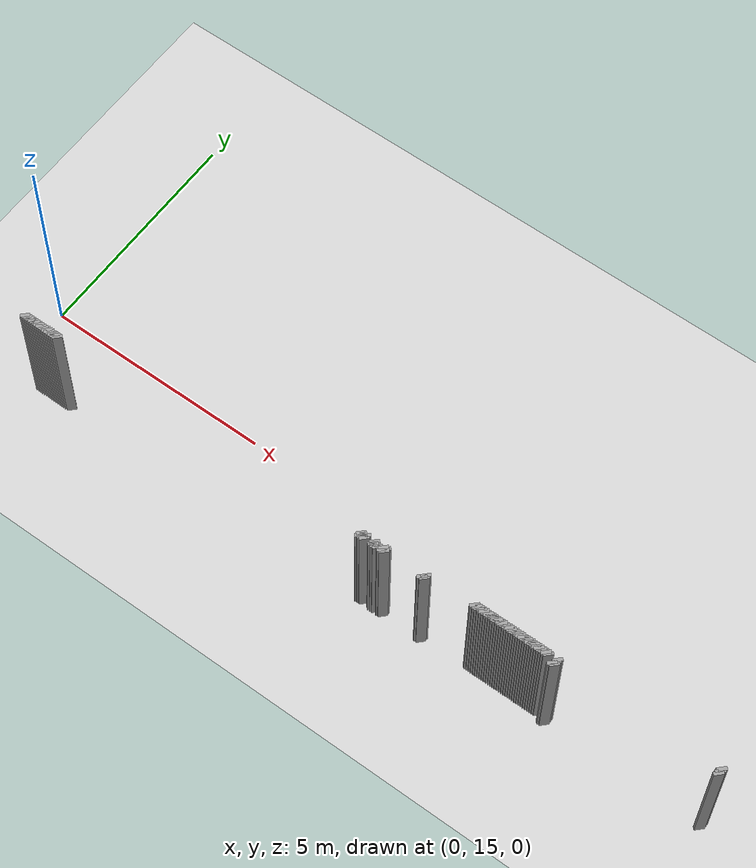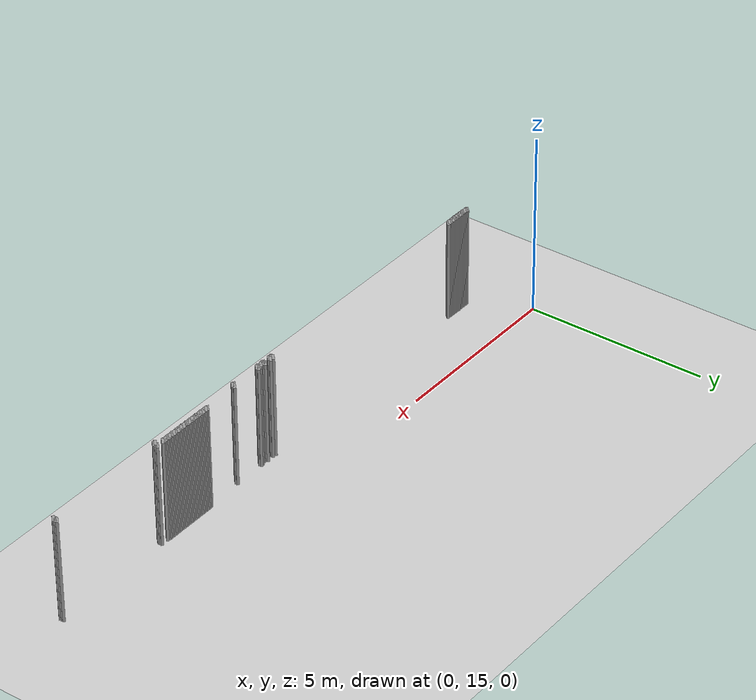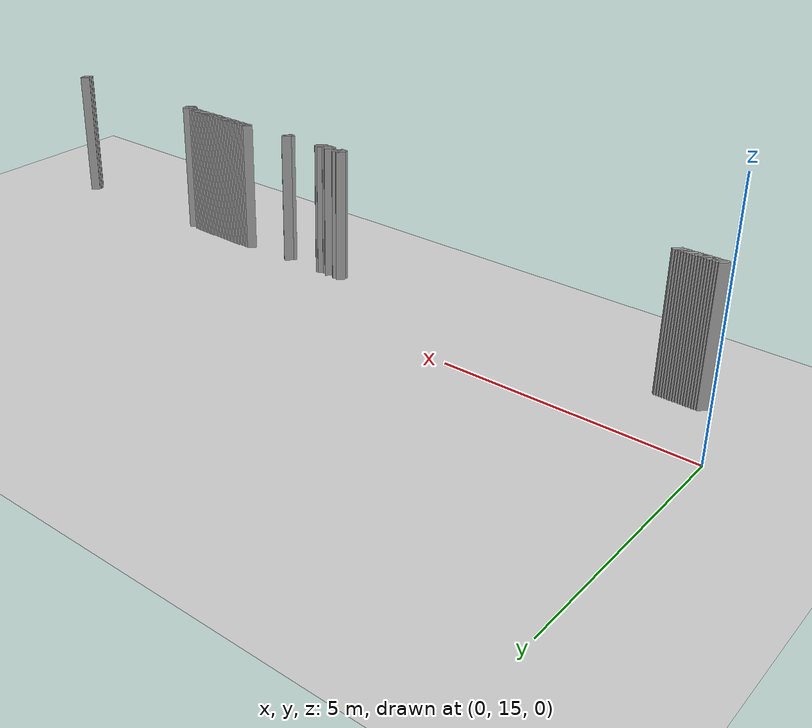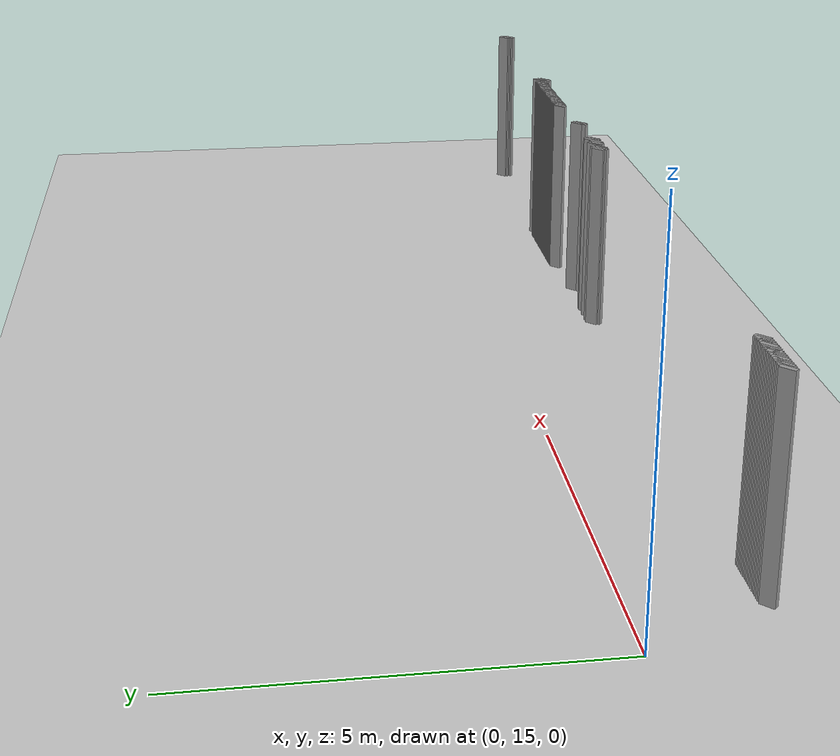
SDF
<sdf version="1.5">
 <world name="default">
  <include><uri>model://ground_plane</uri></include>
  <include><uri>model://sun</uri></include>
  <model name="grey_wall_964">
   <static>1</static>
   <link name="link">
    <pose>11.200000000000001 13.600000000000001  1.4 0 0 -0.7853981633974483</pose>
    <collision name="collision">
     <geometry><box><size>0.07071067811865576 .2  2.8</size></box></geometry>
    </collision>
    <visual name="visual">
     <cast_shadows>0</cast_shadows>
     <geometry><box><size>0.07071067811865576 .2  2.8</size></box></geometry>
     <material>
      <script>
       <uri>model://grey_wall/materials/scripts</uri>
       <uri>model://grey_wall/materials/textures</uri>
       <name>vrc/grey_wall</name>
      </script>
     </material>
    </visual>
   </link>
  </model>
  <model name="grey_wall_965">
   <static>1</static>
   <link name="link">
    <pose>11.25 13.600000000000001  1.4 0 0 -0.7853981633974483</pose>
    <collision name="collision">
     <geometry><box><size>0.07071067811865576 .2  2.8</size></box></geometry>
    </collision>
    <visual name="visual">
     <cast_shadows>0</cast_shadows>
     <geometry><box><size>0.07071067811865576 .2  2.8</size></box></geometry>
     <material>
      <script>
       <uri>model://grey_wall/materials/scripts</uri>
       <uri>model://grey_wall/materials/textures</uri>
       <name>vrc/grey_wall</name>
      </script>
     </material>
    </visual>
   </link>
  </model>
  <model name="grey_wall_966">
   <static>1</static>
   <link name="link">
    <pose>11.3 13.600000000000001  1.4 0 0 -0.7853981633974483</pose>
    <collision name="collision">
     <geometry><box><size>0.07071067811865576 .2  2.8</size></box></geometry>
    </collision>
    <visual name="visual">
     <cast_shadows>0</cast_shadows>
     <geometry><box><size>0.07071067811865576 .2  2.8</size></box></geometry>
     <material>
      <script>
       <uri>model://grey_wall/materials/scripts</uri>
       <uri>model://grey_wall/materials/textures</uri>
       <name>vrc/grey_wall</name>
      </script>
     </material>
    </visual>
   </link>
  </model>
  <model name="grey_wall_967">
   <static>1</static>
   <link name="link">
    <pose>11.350000000000001 13.600000000000001  1.4 0 0 -0.7853981633974483</pose>
    <collision name="collision">
     <geometry><box><size>0.07071067811865576 .2  2.8</size></box></geometry>
    </collision>
    <visual name="visual">
     <cast_shadows>0</cast_shadows>
     <geometry><box><size>0.07071067811865576 .2  2.8</size></box></geometry>
     <material>
      <script>
       <uri>model://grey_wall/materials/scripts</uri>
       <uri>model://grey_wall/materials/textures</uri>
       <name>vrc/grey_wall</name>
      </script>
     </material>
    </visual>
   </link>
  </model>
  <model name="grey_wall_968">
   <static>1</static>
   <link name="link">
    <pose>11.4 13.600000000000001  1.4 0 0 -0.7853981633974483</pose>
    <collision name="collision">
     <geometry><box><size>0.07071067811865576 .2  2.8</size></box></geometry>
    </collision>
    <visual name="visual">
     <cast_shadows>0</cast_shadows>
     <geometry><box><size>0.07071067811865576 .2  2.8</size></box></geometry>
     <material>
      <script>
       <uri>model://grey_wall/materials/scripts</uri>
       <uri>model://grey_wall/materials/textures</uri>
       <name>vrc/grey_wall</name>
      </script>
     </material>
    </visual>
   </link>
  </model>
  <model name="grey_wall_969">
   <static>1</static>
   <link name="link">
    <pose>11.450000000000001 13.600000000000001  1.4 0 0 -0.7853981633974483</pose>
    <collision name="collision">
     <geometry><box><size>0.07071067811865576 .2  2.8</size></box></geometry>
    </collision>
    <visual name="visual">
     <cast_shadows>0</cast_shadows>
     <geometry><box><size>0.07071067811865576 .2  2.8</size></box></geometry>
     <material>
      <script>
       <uri>model://grey_wall/materials/scripts</uri>
       <uri>model://grey_wall/materials/textures</uri>
       <name>vrc/grey_wall</name>
      </script>
     </material>
    </visual>
   </link>
  </model>
  <model name="grey_wall_970">
   <static>1</static>
   <link name="link">
    <pose>11.5 13.600000000000001  1.4 0 0 -0.7853981633974483</pose>
    <collision name="collision">
     <geometry><box><size>0.07071067811865576 .2  2.8</size></box></geometry>
    </collision>
    <visual name="visual">
     <cast_shadows>0</cast_shadows>
     <geometry><box><size>0.07071067811865576 .2  2.8</size></box></geometry>
     <material>
      <script>
       <uri>model://grey_wall/materials/scripts</uri>
       <uri>model://grey_wall/materials/textures</uri>
       <name>vrc/grey_wall</name>
      </script>
     </material>
    </visual>
   </link>
  </model>
  <model name="grey_wall_971">
   <static>1</static>
   <link name="link">
    <pose>11.55 13.600000000000001  1.4 0 0 -0.7853981633974483</pose>
    <collision name="collision">
     <geometry><box><size>0.07071067811865576 .2  2.8</size></box></geometry>
    </collision>
    <visual name="visual">
     <cast_shadows>0</cast_shadows>
     <geometry><box><size>0.07071067811865576 .2  2.8</size></box></geometry>
     <material>
      <script>
       <uri>model://grey_wall/materials/scripts</uri>
       <uri>model://grey_wall/materials/textures</uri>
       <name>vrc/grey_wall</name>
      </script>
     </material>
    </visual>
   </link>
  </model>
  <model name="grey_wall_972">
   <static>1</static>
   <link name="link">
    <pose>11.600000000000001 13.600000000000001  1.4 0 0 -0.7853981633974483</pose>
    <collision name="collision">
     <geometry><box><size>0.07071067811865576 .2  2.8</size></box></geometry>
    </collision>
    <visual name="visual">
     <cast_shadows>0</cast_shadows>
     <geometry><box><size>0.07071067811865576 .2  2.8</size></box></geometry>
     <material>
      <script>
       <uri>model://grey_wall/materials/scripts</uri>
       <uri>model://grey_wall/materials/textures</uri>
       <name>vrc/grey_wall</name>
      </script>
     </material>
    </visual>
   </link>
  </model>
  <model name="grey_wall_973">
   <static>1</static>
   <link name="link">
    <pose>11.65 13.600000000000001  1.4 0 0 -0.7853981633974483</pose>
    <collision name="collision">
     <geometry><box><size>0.07071067811865576 .2  2.8</size></box></geometry>
    </collision>
    <visual name="visual">
     <cast_shadows>0</cast_shadows>
     <geometry><box><size>0.07071067811865576 .2  2.8</size></box></geometry>
     <material>
      <script>
       <uri>model://grey_wall/materials/scripts</uri>
       <uri>model://grey_wall/materials/textures</uri>
       <name>vrc/grey_wall</name>
      </script>
     </material>
    </visual>
   </link>
  </model>
  <model name="grey_wall_974">
   <static>1</static>
   <link name="link">
    <pose>11.700000000000001 13.600000000000001  1.4 0 0 -0.7853981633974483</pose>
    <collision name="collision">
     <geometry><box><size>0.07071067811865576 .2  2.8</size></box></geometry>
    </collision>
    <visual name="visual">
     <cast_shadows>0</cast_shadows>
     <geometry><box><size>0.07071067811865576 .2  2.8</size></box></geometry>
     <material>
      <script>
       <uri>model://grey_wall/materials/scripts</uri>
       <uri>model://grey_wall/materials/textures</uri>
       <name>vrc/grey_wall</name>
      </script>
     </material>
    </visual>
   </link>
  </model>
  <model name="grey_wall_975">
   <static>1</static>
   <link name="link">
    <pose>11.75 13.600000000000001  1.4 0 0 -0.7853981633974483</pose>
    <collision name="collision">
     <geometry><box><size>0.07071067811865576 .2  2.8</size></box></geometry>
    </collision>
    <visual name="visual">
     <cast_shadows>0</cast_shadows>
     <geometry><box><size>0.07071067811865576 .2  2.8</size></box></geometry>
     <material>
      <script>
       <uri>model://grey_wall/materials/scripts</uri>
       <uri>model://grey_wall/materials/textures</uri>
       <name>vrc/grey_wall</name>
      </script>
     </material>
    </visual>
   </link>
  </model>
  <model name="grey_wall_976">
   <static>1</static>
   <link name="link">
    <pose>11.8 13.600000000000001  1.4 0 0 -0.7853981633974483</pose>
    <collision name="collision">
     <geometry><box><size>0.07071067811865576 .2  2.8</size></box></geometry>
    </collision>
    <visual name="visual">
     <cast_shadows>0</cast_shadows>
     <geometry><box><size>0.07071067811865576 .2  2.8</size></box></geometry>
     <material>
      <script>
       <uri>model://grey_wall/materials/scripts</uri>
       <uri>model://grey_wall/materials/textures</uri>
       <name>vrc/grey_wall</name>
      </script>
     </material>
    </visual>
   </link>
  </model>
  <model name="grey_wall_977">
   <static>1</static>
   <link name="link">
    <pose>11.850000000000001 13.600000000000001  1.4 0 0 -0.7853981633974483</pose>
    <collision name="collision">
     <geometry><box><size>0.07071067811865576 .2  2.8</size></box></geometry>
    </collision>
    <visual name="visual">
     <cast_shadows>0</cast_shadows>
     <geometry><box><size>0.07071067811865576 .2  2.8</size></box></geometry>
     <material>
      <script>
       <uri>model://grey_wall/materials/scripts</uri>
       <uri>model://grey_wall/materials/textures</uri>
       <name>vrc/grey_wall</name>
      </script>
     </material>
    </visual>
   </link>
  </model>
  <model name="grey_wall_978">
   <static>1</static>
   <link name="link">
    <pose>11.9 13.600000000000001  1.4 0 0 -0.7853981633974483</pose>
    <collision name="collision">
     <geometry><box><size>0.07071067811865576 .2  2.8</size></box></geometry>
    </collision>
    <visual name="visual">
     <cast_shadows>0</cast_shadows>
     <geometry><box><size>0.07071067811865576 .2  2.8</size></box></geometry>
     <material>
      <script>
       <uri>model://grey_wall/materials/scripts</uri>
       <uri>model://grey_wall/materials/textures</uri>
       <name>vrc/grey_wall</name>
      </script>
     </material>
    </visual>
   </link>
  </model>
  <model name="grey_wall_979">
   <static>1</static>
   <link name="link">
    <pose>11.950000000000001 13.600000000000001  1.4 0 0 -0.7853981633974483</pose>
    <collision name="collision">
     <geometry><box><size>0.07071067811865576 .2  2.8</size></box></geometry>
    </collision>
    <visual name="visual">
     <cast_shadows>0</cast_shadows>
     <geometry><box><size>0.07071067811865576 .2  2.8</size></box></geometry>
     <material>
      <script>
       <uri>model://grey_wall/materials/scripts</uri>
       <uri>model://grey_wall/materials/textures</uri>
       <name>vrc/grey_wall</name>
      </script>
     </material>
    </visual>
   </link>
  </model>
  <model name="grey_wall_980">
   <static>1</static>
   <link name="link">
    <pose>12.0 13.600000000000001  1.4 0 0 -0.7853981633974483</pose>
    <collision name="collision">
     <geometry><box><size>0.07071067811865576 .2  2.8</size></box></geometry>
    </collision>
    <visual name="visual">
     <cast_shadows>0</cast_shadows>
     <geometry><box><size>0.07071067811865576 .2  2.8</size></box></geometry>
     <material>
      <script>
       <uri>model://grey_wall/materials/scripts</uri>
       <uri>model://grey_wall/materials/textures</uri>
       <name>vrc/grey_wall</name>
      </script>
     </material>
    </visual>
   </link>
  </model>
  <model name="grey_wall_981">
   <static>1</static>
   <link name="link">
    <pose>12.05 13.600000000000001  1.4 0 0 -0.7853981633974483</pose>
    <collision name="collision">
     <geometry><box><size>0.07071067811865576 .2  2.8</size></box></geometry>
    </collision>
    <visual name="visual">
     <cast_shadows>0</cast_shadows>
     <geometry><box><size>0.07071067811865576 .2  2.8</size></box></geometry>
     <material>
      <script>
       <uri>model://grey_wall/materials/scripts</uri>
       <uri>model://grey_wall/materials/textures</uri>
       <name>vrc/grey_wall</name>
      </script>
     </material>
    </visual>
   </link>
  </model>
  <model name="grey_wall_982">
   <static>1</static>
   <link name="link">
    <pose>12.100000000000001 13.600000000000001  1.4 0 0 -0.7853981633974483</pose>
    <collision name="collision">
     <geometry><box><size>0.07071067811865576 .2  2.8</size></box></geometry>
    </collision>
    <visual name="visual">
     <cast_shadows>0</cast_shadows>
     <geometry><box><size>0.07071067811865576 .2  2.8</size></box></geometry>
     <material>
      <script>
       <uri>model://grey_wall/materials/scripts</uri>
       <uri>model://grey_wall/materials/textures</uri>
       <name>vrc/grey_wall</name>
      </script>
     </material>
    </visual>
   </link>
  </model>
  <model name="grey_wall_983">
   <static>1</static>
   <link name="link">
    <pose>12.15 13.600000000000001  1.4 0 0 -0.7853981633974483</pose>
    <collision name="collision">
     <geometry><box><size>0.07071067811865576 .2  2.8</size></box></geometry>
    </collision>
    <visual name="visual">
     <cast_shadows>0</cast_shadows>
     <geometry><box><size>0.07071067811865576 .2  2.8</size></box></geometry>
     <material>
      <script>
       <uri>model://grey_wall/materials/scripts</uri>
       <uri>model://grey_wall/materials/textures</uri>
       <name>vrc/grey_wall</name>
      </script>
     </material>
    </visual>
   </link>
  </model>
  <model name="grey_wall_984">
   <static>1</static>
   <link name="link">
    <pose>12.200000000000001 13.600000000000001  1.4 0 0 -0.7853981633974483</pose>
    <collision name="collision">
     <geometry><box><size>0.07071067811865576 .2  2.8</size></box></geometry>
    </collision>
    <visual name="visual">
     <cast_shadows>0</cast_shadows>
     <geometry><box><size>0.07071067811865576 .2  2.8</size></box></geometry>
     <material>
      <script>
       <uri>model://grey_wall/materials/scripts</uri>
       <uri>model://grey_wall/materials/textures</uri>
       <name>vrc/grey_wall</name>
      </script>
     </material>
    </visual>
   </link>
  </model>
  <model name="grey_wall_985">
   <static>1</static>
   <link name="link">
    <pose>12.25 13.600000000000001  1.4 0 0 -0.7853981633974483</pose>
    <collision name="collision">
     <geometry><box><size>0.07071067811865576 .2  2.8</size></box></geometry>
    </collision>
    <visual name="visual">
     <cast_shadows>0</cast_shadows>
     <geometry><box><size>0.07071067811865576 .2  2.8</size></box></geometry>
     <material>
      <script>
       <uri>model://grey_wall/materials/scripts</uri>
       <uri>model://grey_wall/materials/textures</uri>
       <name>vrc/grey_wall</name>
      </script>
     </material>
    </visual>
   </link>
  </model>
  <model name="grey_wall_986">
   <static>1</static>
   <link name="link">
    <pose>12.3 13.600000000000001  1.4 0 0 -0.7853981633974483</pose>
    <collision name="collision">
     <geometry><box><size>0.07071067811865576 .2  2.8</size></box></geometry>
    </collision>
    <visual name="visual">
     <cast_shadows>0</cast_shadows>
     <geometry><box><size>0.07071067811865576 .2  2.8</size></box></geometry>
     <material>
      <script>
       <uri>model://grey_wall/materials/scripts</uri>
       <uri>model://grey_wall/materials/textures</uri>
       <name>vrc/grey_wall</name>
      </script>
     </material>
    </visual>
   </link>
  </model>
  <model name="grey_wall_987">
   <static>1</static>
   <link name="link">
    <pose>12.350000000000001 13.600000000000001  1.4 0 0 -0.7853981633974483</pose>
    <collision name="collision">
     <geometry><box><size>0.07071067811865576 .2  2.8</size></box></geometry>
    </collision>
    <visual name="visual">
     <cast_shadows>0</cast_shadows>
     <geometry><box><size>0.07071067811865576 .2  2.8</size></box></geometry>
     <material>
      <script>
       <uri>model://grey_wall/materials/scripts</uri>
       <uri>model://grey_wall/materials/textures</uri>
       <name>vrc/grey_wall</name>
      </script>
     </material>
    </visual>
   </link>
  </model>
  <model name="grey_wall_988">
   <static>1</static>
   <link name="link">
    <pose>12.4 13.600000000000001  1.4 0 0 -0.7853981633974483</pose>
    <collision name="collision">
     <geometry><box><size>0.07071067811865576 .2  2.8</size></box></geometry>
    </collision>
    <visual name="visual">
     <cast_shadows>0</cast_shadows>
     <geometry><box><size>0.07071067811865576 .2  2.8</size></box></geometry>
     <material>
      <script>
       <uri>model://grey_wall/materials/scripts</uri>
       <uri>model://grey_wall/materials/textures</uri>
       <name>vrc/grey_wall</name>
      </script>
     </material>
    </visual>
   </link>
  </model>
  <model name="grey_wall_989">
   <static>1</static>
   <link name="link">
    <pose>12.450000000000001 13.600000000000001  1.4 0 0 -0.7853981633974483</pose>
    <collision name="collision">
     <geometry><box><size>0.07071067811865576 .2  2.8</size></box></geometry>
    </collision>
    <visual name="visual">
     <cast_shadows>0</cast_shadows>
     <geometry><box><size>0.07071067811865576 .2  2.8</size></box></geometry>
     <material>
      <script>
       <uri>model://grey_wall/materials/scripts</uri>
       <uri>model://grey_wall/materials/textures</uri>
       <name>vrc/grey_wall</name>
      </script>
     </material>
    </visual>
   </link>
  </model>
  <model name="grey_wall_990">
   <static>1</static>
   <link name="link">
    <pose>12.5 13.600000000000001  1.4 0 0 -0.7853981633974483</pose>
    <collision name="collision">
     <geometry><box><size>0.07071067811865576 .2  2.8</size></box></geometry>
    </collision>
    <visual name="visual">
     <cast_shadows>0</cast_shadows>
     <geometry><box><size>0.07071067811865576 .2  2.8</size></box></geometry>
     <material>
      <script>
       <uri>model://grey_wall/materials/scripts</uri>
       <uri>model://grey_wall/materials/textures</uri>
       <name>vrc/grey_wall</name>
      </script>
     </material>
    </visual>
   </link>
  </model>
  <model name="grey_wall_991">
   <static>1</static>
   <link name="link">
    <pose>12.55 13.600000000000001  1.4 0 0 -0.7853981633974483</pose>
    <collision name="collision">
     <geometry><box><size>0.07071067811865576 .2  2.8</size></box></geometry>
    </collision>
    <visual name="visual">
     <cast_shadows>0</cast_shadows>
     <geometry><box><size>0.07071067811865576 .2  2.8</size></box></geometry>
     <material>
      <script>
       <uri>model://grey_wall/materials/scripts</uri>
       <uri>model://grey_wall/materials/textures</uri>
       <name>vrc/grey_wall</name>
      </script>
     </material>
    </visual>
   </link>
  </model>
  <model name="grey_wall_992">
   <static>1</static>
   <link name="link">
    <pose>12.600000000000001 13.600000000000001  1.4 0 0 -0.7853981633974483</pose>
    <collision name="collision">
     <geometry><box><size>0.07071067811865576 .2  2.8</size></box></geometry>
    </collision>
    <visual name="visual">
     <cast_shadows>0</cast_shadows>
     <geometry><box><size>0.07071067811865576 .2  2.8</size></box></geometry>
     <material>
      <script>
       <uri>model://grey_wall/materials/scripts</uri>
       <uri>model://grey_wall/materials/textures</uri>
       <name>vrc/grey_wall</name>
      </script>
     </material>
    </visual>
   </link>
  </model>
  <model name="grey_wall_993">
   <static>1</static>
   <link name="link">
    <pose>12.65 13.600000000000001  1.4 0 0 -0.7853981633974483</pose>
    <collision name="collision">
     <geometry><box><size>0.07071067811865576 .2  2.8</size></box></geometry>
    </collision>
    <visual name="visual">
     <cast_shadows>0</cast_shadows>
     <geometry><box><size>0.07071067811865576 .2  2.8</size></box></geometry>
     <material>
      <script>
       <uri>model://grey_wall/materials/scripts</uri>
       <uri>model://grey_wall/materials/textures</uri>
       <name>vrc/grey_wall</name>
      </script>
     </material>
    </visual>
   </link>
  </model>
  <model name="grey_wall_994">
   <static>1</static>
   <link name="link">
    <pose>12.700000000000001 13.600000000000001  1.4 0 0 -0.7853981633974483</pose>
    <collision name="collision">
     <geometry><box><size>0.07071067811865576 .2  2.8</size></box></geometry>
    </collision>
    <visual name="visual">
     <cast_shadows>0</cast_shadows>
     <geometry><box><size>0.07071067811865576 .2  2.8</size></box></geometry>
     <material>
      <script>
       <uri>model://grey_wall/materials/scripts</uri>
       <uri>model://grey_wall/materials/textures</uri>
       <name>vrc/grey_wall</name>
      </script>
     </material>
    </visual>
   </link>
  </model>
  <model name="grey_wall_995">
   <static>1</static>
   <link name="link">
    <pose>12.75 13.600000000000001  1.4 0 0 -0.7853981633974483</pose>
    <collision name="collision">
     <geometry><box><size>0.07071067811865576 .2  2.8</size></box></geometry>
    </collision>
    <visual name="visual">
     <cast_shadows>0</cast_shadows>
     <geometry><box><size>0.07071067811865576 .2  2.8</size></box></geometry>
     <material>
      <script>
       <uri>model://grey_wall/materials/scripts</uri>
       <uri>model://grey_wall/materials/textures</uri>
       <name>vrc/grey_wall</name>
      </script>
     </material>
    </visual>
   </link>
  </model>
  <model name="grey_wall_996">
   <static>1</static>
   <link name="link">
    <pose>12.8 13.600000000000001  1.4 0 0 -0.7853981633974483</pose>
    <collision name="collision">
     <geometry><box><size>0.07071067811865576 .2  2.8</size></box></geometry>
    </collision>
    <visual name="visual">
     <cast_shadows>0</cast_shadows>
     <geometry><box><size>0.07071067811865576 .2  2.8</size></box></geometry>
     <material>
      <script>
       <uri>model://grey_wall/materials/scripts</uri>
       <uri>model://grey_wall/materials/textures</uri>
       <name>vrc/grey_wall</name>
      </script>
     </material>
    </visual>
   </link>
  </model>
  <model name="grey_wall_997">
   <static>1</static>
   <link name="link">
    <pose>13.0 13.600000000000001  1.4 0 0 -0.7853981633974483</pose>
    <collision name="collision">
     <geometry><box><size>0.07071067811865576 .2  2.8</size></box></geometry>
    </collision>
    <visual name="visual">
     <cast_shadows>0</cast_shadows>
     <geometry><box><size>0.07071067811865576 .2  2.8</size></box></geometry>
     <material>
      <script>
       <uri>model://grey_wall/materials/scripts</uri>
       <uri>model://grey_wall/materials/textures</uri>
       <name>vrc/grey_wall</name>
      </script>
     </material>
    </visual>
   </link>
  </model>
  <model name="grey_wall_998">
   <static>1</static>
   <link name="link">
    <pose>16.45 13.600000000000001  1.4 0 0 -0.7853981633974838</pose>
    <collision name="collision">
     <geometry><box><size>0.07071067811865325 .2  2.8</size></box></geometry>
    </collision>
    <visual name="visual">
     <cast_shadows>0</cast_shadows>
     <geometry><box><size>0.07071067811865325 .2  2.8</size></box></geometry>
     <material>
      <script>
       <uri>model://grey_wall/materials/scripts</uri>
       <uri>model://grey_wall/materials/textures</uri>
       <name>vrc/grey_wall</name>
      </script>
     </material>
    </visual>
   </link>
  </model>
  <model name="grey_wall_999">
   <static>1</static>
   <link name="link">
    <pose>8.700000000000001 13.55  1.4 0 0 -0.7853981633974483</pose>
    <collision name="collision">
     <geometry><box><size>0.07071067811865576 .2  2.8</size></box></geometry>
    </collision>
    <visual name="visual">
     <cast_shadows>0</cast_shadows>
     <geometry><box><size>0.07071067811865576 .2  2.8</size></box></geometry>
     <material>
      <script>
       <uri>model://grey_wall/materials/scripts</uri>
       <uri>model://grey_wall/materials/textures</uri>
       <name>vrc/grey_wall</name>
      </script>
     </material>
    </visual>
   </link>
  </model>
  <model name="grey_wall_1000">
   <static>1</static>
   <link name="link">
    <pose>8.8 13.55  1.4 0 0 -0.7853981633974483</pose>
    <collision name="collision">
     <geometry><box><size>0.07071067811865576 .2  2.8</size></box></geometry>
    </collision>
    <visual name="visual">
     <cast_shadows>0</cast_shadows>
     <geometry><box><size>0.07071067811865576 .2  2.8</size></box></geometry>
     <material>
      <script>
       <uri>model://grey_wall/materials/scripts</uri>
       <uri>model://grey_wall/materials/textures</uri>
       <name>vrc/grey_wall</name>
      </script>
     </material>
    </visual>
   </link>
  </model>
  <model name="grey_wall_1001">
   <static>1</static>
   <link name="link">
    <pose>9.0 13.55  1.4 0 0 -0.7853981633974483</pose>
    <collision name="collision">
     <geometry><box><size>0.07071067811865576 .2  2.8</size></box></geometry>
    </collision>
    <visual name="visual">
     <cast_shadows>0</cast_shadows>
     <geometry><box><size>0.07071067811865576 .2  2.8</size></box></geometry>
     <material>
      <script>
       <uri>model://grey_wall/materials/scripts</uri>
       <uri>model://grey_wall/materials/textures</uri>
       <name>vrc/grey_wall</name>
      </script>
     </material>
    </visual>
   </link>
  </model>
  <model name="grey_wall_1002">
   <static>1</static>
   <link name="link">
    <pose>9.200000000000001 13.55  1.4 0 0 -0.7853981633974483</pose>
    <collision name="collision">
     <geometry><box><size>0.07071067811865576 .2  2.8</size></box></geometry>
    </collision>
    <visual name="visual">
     <cast_shadows>0</cast_shadows>
     <geometry><box><size>0.07071067811865576 .2  2.8</size></box></geometry>
     <material>
      <script>
       <uri>model://grey_wall/materials/scripts</uri>
       <uri>model://grey_wall/materials/textures</uri>
       <name>vrc/grey_wall</name>
      </script>
     </material>
    </visual>
   </link>
  </model>
  <model name="grey_wall_1003">
   <static>1</static>
   <link name="link">
    <pose>9.25 13.55  1.4 0 0 -0.7853981633974483</pose>
    <collision name="collision">
     <geometry><box><size>0.07071067811865576 .2  2.8</size></box></geometry>
    </collision>
    <visual name="visual">
     <cast_shadows>0</cast_shadows>
     <geometry><box><size>0.07071067811865576 .2  2.8</size></box></geometry>
     <material>
      <script>
       <uri>model://grey_wall/materials/scripts</uri>
       <uri>model://grey_wall/materials/textures</uri>
       <name>vrc/grey_wall</name>
      </script>
     </material>
    </visual>
   </link>
  </model>
  <model name="grey_wall_1004">
   <static>1</static>
   <link name="link">
    <pose>10.15 13.55  1.4 0 0 -0.7853981633974483</pose>
    <collision name="collision">
     <geometry><box><size>0.07071067811865576 .2  2.8</size></box></geometry>
    </collision>
    <visual name="visual">
     <cast_shadows>0</cast_shadows>
     <geometry><box><size>0.07071067811865576 .2  2.8</size></box></geometry>
     <material>
      <script>
       <uri>model://grey_wall/materials/scripts</uri>
       <uri>model://grey_wall/materials/textures</uri>
       <name>vrc/grey_wall</name>
      </script>
     </material>
    </visual>
   </link>
  </model>
  <model name="grey_wall_1005">
   <static>1</static>
   <link name="link">
    <pose>13.0 13.55  1.4 0 0 -0.7853981633974483</pose>
    <collision name="collision">
     <geometry><box><size>0.07071067811865576 .2  2.8</size></box></geometry>
    </collision>
    <visual name="visual">
     <cast_shadows>0</cast_shadows>
     <geometry><box><size>0.07071067811865576 .2  2.8</size></box></geometry>
     <material>
      <script>
       <uri>model://grey_wall/materials/scripts</uri>
       <uri>model://grey_wall/materials/textures</uri>
       <name>vrc/grey_wall</name>
      </script>
     </material>
    </visual>
   </link>
  </model>
  <model name="grey_wall_1006">
   <static>1</static>
   <link name="link">
    <pose>16.45 13.55  1.4 0 0 -0.7853981633974838</pose>
    <collision name="collision">
     <geometry><box><size>0.07071067811865325 .2  2.8</size></box></geometry>
    </collision>
    <visual name="visual">
     <cast_shadows>0</cast_shadows>
     <geometry><box><size>0.07071067811865325 .2  2.8</size></box></geometry>
     <material>
      <script>
       <uri>model://grey_wall/materials/scripts</uri>
       <uri>model://grey_wall/materials/textures</uri>
       <name>vrc/grey_wall</name>
      </script>
     </material>
    </visual>
   </link>
  </model>
  <model name="grey_wall_1007">
   <static>1</static>
   <link name="link">
    <pose>8.700000000000001 13.5  1.4 0 0 -0.7853981633974483</pose>
    <collision name="collision">
     <geometry><box><size>0.07071067811865576 .2  2.8</size></box></geometry>
    </collision>
    <visual name="visual">
     <cast_shadows>0</cast_shadows>
     <geometry><box><size>0.07071067811865576 .2  2.8</size></box></geometry>
     <material>
      <script>
       <uri>model://grey_wall/materials/scripts</uri>
       <uri>model://grey_wall/materials/textures</uri>
       <name>vrc/grey_wall</name>
      </script>
     </material>
    </visual>
   </link>
  </model>
  <model name="grey_wall_1008">
   <static>1</static>
   <link name="link">
    <pose>8.75 13.5  1.4 0 0 -0.7853981633974483</pose>
    <collision name="collision">
     <geometry><box><size>0.07071067811865576 .2  2.8</size></box></geometry>
    </collision>
    <visual name="visual">
     <cast_shadows>0</cast_shadows>
     <geometry><box><size>0.07071067811865576 .2  2.8</size></box></geometry>
     <material>
      <script>
       <uri>model://grey_wall/materials/scripts</uri>
       <uri>model://grey_wall/materials/textures</uri>
       <name>vrc/grey_wall</name>
      </script>
     </material>
    </visual>
   </link>
  </model>
  <model name="grey_wall_1009">
   <static>1</static>
   <link name="link">
    <pose>8.8 13.5  1.4 0 0 -0.7853981633974483</pose>
    <collision name="collision">
     <geometry><box><size>0.07071067811865576 .2  2.8</size></box></geometry>
    </collision>
    <visual name="visual">
     <cast_shadows>0</cast_shadows>
     <geometry><box><size>0.07071067811865576 .2  2.8</size></box></geometry>
     <material>
      <script>
       <uri>model://grey_wall/materials/scripts</uri>
       <uri>model://grey_wall/materials/textures</uri>
       <name>vrc/grey_wall</name>
      </script>
     </material>
    </visual>
   </link>
  </model>
  <model name="grey_wall_1010">
   <static>1</static>
   <link name="link">
    <pose>9.0 13.5  1.4 0 0 -0.7853981633974483</pose>
    <collision name="collision">
     <geometry><box><size>0.07071067811865576 .2  2.8</size></box></geometry>
    </collision>
    <visual name="visual">
     <cast_shadows>0</cast_shadows>
     <geometry><box><size>0.07071067811865576 .2  2.8</size></box></geometry>
     <material>
      <script>
       <uri>model://grey_wall/materials/scripts</uri>
       <uri>model://grey_wall/materials/textures</uri>
       <name>vrc/grey_wall</name>
      </script>
     </material>
    </visual>
   </link>
  </model>
  <model name="grey_wall_1011">
   <static>1</static>
   <link name="link">
    <pose>9.05 13.5  1.4 0 0 -0.7853981633974483</pose>
    <collision name="collision">
     <geometry><box><size>0.07071067811865576 .2  2.8</size></box></geometry>
    </collision>
    <visual name="visual">
     <cast_shadows>0</cast_shadows>
     <geometry><box><size>0.07071067811865576 .2  2.8</size></box></geometry>
     <material>
      <script>
       <uri>model://grey_wall/materials/scripts</uri>
       <uri>model://grey_wall/materials/textures</uri>
       <name>vrc/grey_wall</name>
      </script>
     </material>
    </visual>
   </link>
  </model>
  <model name="grey_wall_1012">
   <static>1</static>
   <link name="link">
    <pose>9.1 13.5  1.4 0 0 -0.7853981633974483</pose>
    <collision name="collision">
     <geometry><box><size>0.07071067811865576 .2  2.8</size></box></geometry>
    </collision>
    <visual name="visual">
     <cast_shadows>0</cast_shadows>
     <geometry><box><size>0.07071067811865576 .2  2.8</size></box></geometry>
     <material>
      <script>
       <uri>model://grey_wall/materials/scripts</uri>
       <uri>model://grey_wall/materials/textures</uri>
       <name>vrc/grey_wall</name>
      </script>
     </material>
    </visual>
   </link>
  </model>
  <model name="grey_wall_1013">
   <static>1</static>
   <link name="link">
    <pose>9.200000000000001 13.5  1.4 0 0 -0.7853981633974483</pose>
    <collision name="collision">
     <geometry><box><size>0.07071067811865576 .2  2.8</size></box></geometry>
    </collision>
    <visual name="visual">
     <cast_shadows>0</cast_shadows>
     <geometry><box><size>0.07071067811865576 .2  2.8</size></box></geometry>
     <material>
      <script>
       <uri>model://grey_wall/materials/scripts</uri>
       <uri>model://grey_wall/materials/textures</uri>
       <name>vrc/grey_wall</name>
      </script>
     </material>
    </visual>
   </link>
  </model>
  <model name="grey_wall_1014">
   <static>1</static>
   <link name="link">
    <pose>9.25 13.5  1.4 0 0 -0.7853981633974483</pose>
    <collision name="collision">
     <geometry><box><size>0.07071067811865576 .2  2.8</size></box></geometry>
    </collision>
    <visual name="visual">
     <cast_shadows>0</cast_shadows>
     <geometry><box><size>0.07071067811865576 .2  2.8</size></box></geometry>
     <material>
      <script>
       <uri>model://grey_wall/materials/scripts</uri>
       <uri>model://grey_wall/materials/textures</uri>
       <name>vrc/grey_wall</name>
      </script>
     </material>
    </visual>
   </link>
  </model>
  <model name="grey_wall_1015">
   <static>1</static>
   <link name="link">
    <pose>10.100000000000001 13.5  1.4 0 0 -0.7853981633974483</pose>
    <collision name="collision">
     <geometry><box><size>0.07071067811865576 .2  2.8</size></box></geometry>
    </collision>
    <visual name="visual">
     <cast_shadows>0</cast_shadows>
     <geometry><box><size>0.07071067811865576 .2  2.8</size></box></geometry>
     <material>
      <script>
       <uri>model://grey_wall/materials/scripts</uri>
       <uri>model://grey_wall/materials/textures</uri>
       <name>vrc/grey_wall</name>
      </script>
     </material>
    </visual>
   </link>
  </model>
  <model name="grey_wall_1016">
   <static>1</static>
   <link name="link">
    <pose>10.15 13.5  1.4 0 0 -0.7853981633974483</pose>
    <collision name="collision">
     <geometry><box><size>0.07071067811865576 .2  2.8</size></box></geometry>
    </collision>
    <visual name="visual">
     <cast_shadows>0</cast_shadows>
     <geometry><box><size>0.07071067811865576 .2  2.8</size></box></geometry>
     <material>
      <script>
       <uri>model://grey_wall/materials/scripts</uri>
       <uri>model://grey_wall/materials/textures</uri>
       <name>vrc/grey_wall</name>
      </script>
     </material>
    </visual>
   </link>
  </model>
  <model name="grey_wall_1017">
   <static>1</static>
   <link name="link">
    <pose>12.950000000000001 13.5  1.4 0 0 -0.7853981633974483</pose>
    <collision name="collision">
     <geometry><box><size>0.07071067811865576 .2  2.8</size></box></geometry>
    </collision>
    <visual name="visual">
     <cast_shadows>0</cast_shadows>
     <geometry><box><size>0.07071067811865576 .2  2.8</size></box></geometry>
     <material>
      <script>
       <uri>model://grey_wall/materials/scripts</uri>
       <uri>model://grey_wall/materials/textures</uri>
       <name>vrc/grey_wall</name>
      </script>
     </material>
    </visual>
   </link>
  </model>
  <model name="grey_wall_1018">
   <static>1</static>
   <link name="link">
    <pose>13.0 13.5  1.4 0 0 -0.7853981633974483</pose>
    <collision name="collision">
     <geometry><box><size>0.07071067811865576 .2  2.8</size></box></geometry>
    </collision>
    <visual name="visual">
     <cast_shadows>0</cast_shadows>
     <geometry><box><size>0.07071067811865576 .2  2.8</size></box></geometry>
     <material>
      <script>
       <uri>model://grey_wall/materials/scripts</uri>
       <uri>model://grey_wall/materials/textures</uri>
       <name>vrc/grey_wall</name>
      </script>
     </material>
    </visual>
   </link>
  </model>
  <model name="grey_wall_1019">
   <static>1</static>
   <link name="link">
    <pose>16.45 13.5  1.4 0 0 -0.7853981633974838</pose>
    <collision name="collision">
     <geometry><box><size>0.07071067811865325 .2  2.8</size></box></geometry>
    </collision>
    <visual name="visual">
     <cast_shadows>0</cast_shadows>
     <geometry><box><size>0.07071067811865325 .2  2.8</size></box></geometry>
     <material>
      <script>
       <uri>model://grey_wall/materials/scripts</uri>
       <uri>model://grey_wall/materials/textures</uri>
       <name>vrc/grey_wall</name>
      </script>
     </material>
    </visual>
   </link>
  </model>
  <model name="grey_wall_1020">
   <static>1</static>
   <link name="link">
    <pose>0.75 13.450000000000001  1.4 0 0 -0.7853981633974549</pose>
    <collision name="collision">
     <geometry><box><size>0.07071067811865529 .2  2.8</size></box></geometry>
    </collision>
    <visual name="visual">
     <cast_shadows>0</cast_shadows>
     <geometry><box><size>0.07071067811865529 .2  2.8</size></box></geometry>
     <material>
      <script>
       <uri>model://grey_wall/materials/scripts</uri>
       <uri>model://grey_wall/materials/textures</uri>
       <name>vrc/grey_wall</name>
      </script>
     </material>
    </visual>
   </link>
  </model>
  <model name="grey_wall_1021">
   <static>1</static>
   <link name="link">
    <pose>0.8 13.450000000000001  1.4 0 0 -0.7853981633974549</pose>
    <collision name="collision">
     <geometry><box><size>0.07071067811865529 .2  2.8</size></box></geometry>
    </collision>
    <visual name="visual">
     <cast_shadows>0</cast_shadows>
     <geometry><box><size>0.07071067811865529 .2  2.8</size></box></geometry>
     <material>
      <script>
       <uri>model://grey_wall/materials/scripts</uri>
       <uri>model://grey_wall/materials/textures</uri>
       <name>vrc/grey_wall</name>
      </script>
     </material>
    </visual>
   </link>
  </model>
  <model name="grey_wall_1022">
   <static>1</static>
   <link name="link">
    <pose>0.8500000000000001 13.450000000000001  1.4 0 0 -0.7853981633974549</pose>
    <collision name="collision">
     <geometry><box><size>0.07071067811865529 .2  2.8</size></box></geometry>
    </collision>
    <visual name="visual">
     <cast_shadows>0</cast_shadows>
     <geometry><box><size>0.07071067811865529 .2  2.8</size></box></geometry>
     <material>
      <script>
       <uri>model://grey_wall/materials/scripts</uri>
       <uri>model://grey_wall/materials/textures</uri>
       <name>vrc/grey_wall</name>
      </script>
     </material>
    </visual>
   </link>
  </model>
  <model name="grey_wall_1023">
   <static>1</static>
   <link name="link">
    <pose>0.9 13.450000000000001  1.4 0 0 -0.7853981633974549</pose>
    <collision name="collision">
     <geometry><box><size>0.07071067811865529 .2  2.8</size></box></geometry>
    </collision>
    <visual name="visual">
     <cast_shadows>0</cast_shadows>
     <geometry><box><size>0.07071067811865529 .2  2.8</size></box></geometry>
     <material>
      <script>
       <uri>model://grey_wall/materials/scripts</uri>
       <uri>model://grey_wall/materials/textures</uri>
       <name>vrc/grey_wall</name>
      </script>
     </material>
    </visual>
   </link>
  </model>
  <model name="grey_wall_1024">
   <static>1</static>
   <link name="link">
    <pose>0.9500000000000001 13.450000000000001  1.4 0 0 -0.7853981633974549</pose>
    <collision name="collision">
     <geometry><box><size>0.07071067811865529 .2  2.8</size></box></geometry>
    </collision>
    <visual name="visual">
     <cast_shadows>0</cast_shadows>
     <geometry><box><size>0.07071067811865529 .2  2.8</size></box></geometry>
     <material>
      <script>
       <uri>model://grey_wall/materials/scripts</uri>
       <uri>model://grey_wall/materials/textures</uri>
       <name>vrc/grey_wall</name>
      </script>
     </material>
    </visual>
   </link>
  </model>
  <model name="grey_wall_1025">
   <static>1</static>
   <link name="link">
    <pose>1.0 13.450000000000001  1.4 0 0 -0.785398163397456</pose>
    <collision name="collision">
     <geometry><box><size>0.07071067811865521 .2  2.8</size></box></geometry>
    </collision>
    <visual name="visual">
     <cast_shadows>0</cast_shadows>
     <geometry><box><size>0.07071067811865521 .2  2.8</size></box></geometry>
     <material>
      <script>
       <uri>model://grey_wall/materials/scripts</uri>
       <uri>model://grey_wall/materials/textures</uri>
       <name>vrc/grey_wall</name>
      </script>
     </material>
    </visual>
   </link>
  </model>
  <model name="grey_wall_1026">
   <static>1</static>
   <link name="link">
    <pose>1.05 13.450000000000001  1.4 0 0 -0.7853981633974572</pose>
    <collision name="collision">
     <geometry><box><size>0.07071067811865513 .2  2.8</size></box></geometry>
    </collision>
    <visual name="visual">
     <cast_shadows>0</cast_shadows>
     <geometry><box><size>0.07071067811865513 .2  2.8</size></box></geometry>
     <material>
      <script>
       <uri>model://grey_wall/materials/scripts</uri>
       <uri>model://grey_wall/materials/textures</uri>
       <name>vrc/grey_wall</name>
      </script>
     </material>
    </visual>
   </link>
  </model>
  <model name="grey_wall_1027">
   <static>1</static>
   <link name="link">
    <pose>1.1 13.450000000000001  1.4 0 0 -0.7853981633974572</pose>
    <collision name="collision">
     <geometry><box><size>0.07071067811865513 .2  2.8</size></box></geometry>
    </collision>
    <visual name="visual">
     <cast_shadows>0</cast_shadows>
     <geometry><box><size>0.07071067811865513 .2  2.8</size></box></geometry>
     <material>
      <script>
       <uri>model://grey_wall/materials/scripts</uri>
       <uri>model://grey_wall/materials/textures</uri>
       <name>vrc/grey_wall</name>
      </script>
     </material>
    </visual>
   </link>
  </model>
  <model name="grey_wall_1028">
   <static>1</static>
   <link name="link">
    <pose>1.1500000000000001 13.450000000000001  1.4 0 0 -0.7853981633974572</pose>
    <collision name="collision">
     <geometry><box><size>0.07071067811865513 .2  2.8</size></box></geometry>
    </collision>
    <visual name="visual">
     <cast_shadows>0</cast_shadows>
     <geometry><box><size>0.07071067811865513 .2  2.8</size></box></geometry>
     <material>
      <script>
       <uri>model://grey_wall/materials/scripts</uri>
       <uri>model://grey_wall/materials/textures</uri>
       <name>vrc/grey_wall</name>
      </script>
     </material>
    </visual>
   </link>
  </model>
  <model name="grey_wall_1029">
   <static>1</static>
   <link name="link">
    <pose>1.2000000000000002 13.450000000000001  1.4 0 0 -0.7853981633974572</pose>
    <collision name="collision">
     <geometry><box><size>0.07071067811865513 .2  2.8</size></box></geometry>
    </collision>
    <visual name="visual">
     <cast_shadows>0</cast_shadows>
     <geometry><box><size>0.07071067811865513 .2  2.8</size></box></geometry>
     <material>
      <script>
       <uri>model://grey_wall/materials/scripts</uri>
       <uri>model://grey_wall/materials/textures</uri>
       <name>vrc/grey_wall</name>
      </script>
     </material>
    </visual>
   </link>
  </model>
  <model name="grey_wall_1030">
   <static>1</static>
   <link name="link">
    <pose>1.25 13.450000000000001  1.4 0 0 -0.7853981633974572</pose>
    <collision name="collision">
     <geometry><box><size>0.07071067811865513 .2  2.8</size></box></geometry>
    </collision>
    <visual name="visual">
     <cast_shadows>0</cast_shadows>
     <geometry><box><size>0.07071067811865513 .2  2.8</size></box></geometry>
     <material>
      <script>
       <uri>model://grey_wall/materials/scripts</uri>
       <uri>model://grey_wall/materials/textures</uri>
       <name>vrc/grey_wall</name>
      </script>
     </material>
    </visual>
   </link>
  </model>
  <model name="grey_wall_1031">
   <static>1</static>
   <link name="link">
    <pose>1.3 13.450000000000001  1.4 0 0 -0.7853981633974572</pose>
    <collision name="collision">
     <geometry><box><size>0.07071067811865513 .2  2.8</size></box></geometry>
    </collision>
    <visual name="visual">
     <cast_shadows>0</cast_shadows>
     <geometry><box><size>0.07071067811865513 .2  2.8</size></box></geometry>
     <material>
      <script>
       <uri>model://grey_wall/materials/scripts</uri>
       <uri>model://grey_wall/materials/textures</uri>
       <name>vrc/grey_wall</name>
      </script>
     </material>
    </visual>
   </link>
  </model>
  <model name="grey_wall_1032">
   <static>1</static>
   <link name="link">
    <pose>1.35 13.450000000000001  1.4 0 0 -0.7853981633974572</pose>
    <collision name="collision">
     <geometry><box><size>0.07071067811865513 .2  2.8</size></box></geometry>
    </collision>
    <visual name="visual">
     <cast_shadows>0</cast_shadows>
     <geometry><box><size>0.07071067811865513 .2  2.8</size></box></geometry>
     <material>
      <script>
       <uri>model://grey_wall/materials/scripts</uri>
       <uri>model://grey_wall/materials/textures</uri>
       <name>vrc/grey_wall</name>
      </script>
     </material>
    </visual>
   </link>
  </model>
  <model name="grey_wall_1033">
   <static>1</static>
   <link name="link">
    <pose>1.4000000000000001 13.450000000000001  1.4 0 0 -0.7853981633974572</pose>
    <collision name="collision">
     <geometry><box><size>0.07071067811865513 .2  2.8</size></box></geometry>
    </collision>
    <visual name="visual">
     <cast_shadows>0</cast_shadows>
     <geometry><box><size>0.07071067811865513 .2  2.8</size></box></geometry>
     <material>
      <script>
       <uri>model://grey_wall/materials/scripts</uri>
       <uri>model://grey_wall/materials/textures</uri>
       <name>vrc/grey_wall</name>
      </script>
     </material>
    </visual>
   </link>
  </model>
  <model name="grey_wall_1034">
   <static>1</static>
   <link name="link">
    <pose>1.4500000000000002 13.450000000000001  1.4 0 0 -0.7853981633974572</pose>
    <collision name="collision">
     <geometry><box><size>0.07071067811865513 .2  2.8</size></box></geometry>
    </collision>
    <visual name="visual">
     <cast_shadows>0</cast_shadows>
     <geometry><box><size>0.07071067811865513 .2  2.8</size></box></geometry>
     <material>
      <script>
       <uri>model://grey_wall/materials/scripts</uri>
       <uri>model://grey_wall/materials/textures</uri>
       <name>vrc/grey_wall</name>
      </script>
     </material>
    </visual>
   </link>
  </model>
  <model name="grey_wall_1035">
   <static>1</static>
   <link name="link">
    <pose>1.5 13.450000000000001  1.4 0 0 -0.7853981633974572</pose>
    <collision name="collision">
     <geometry><box><size>0.07071067811865513 .2  2.8</size></box></geometry>
    </collision>
    <visual name="visual">
     <cast_shadows>0</cast_shadows>
     <geometry><box><size>0.07071067811865513 .2  2.8</size></box></geometry>
     <material>
      <script>
       <uri>model://grey_wall/materials/scripts</uri>
       <uri>model://grey_wall/materials/textures</uri>
       <name>vrc/grey_wall</name>
      </script>
     </material>
    </visual>
   </link>
  </model>
  <model name="grey_wall_1036">
   <static>1</static>
   <link name="link">
    <pose>1.55 13.450000000000001  1.4 0 0 -0.7853981633974572</pose>
    <collision name="collision">
     <geometry><box><size>0.07071067811865513 .2  2.8</size></box></geometry>
    </collision>
    <visual name="visual">
     <cast_shadows>0</cast_shadows>
     <geometry><box><size>0.07071067811865513 .2  2.8</size></box></geometry>
     <material>
      <script>
       <uri>model://grey_wall/materials/scripts</uri>
       <uri>model://grey_wall/materials/textures</uri>
       <name>vrc/grey_wall</name>
      </script>
     </material>
    </visual>
   </link>
  </model>
 </world>
</sdf>
